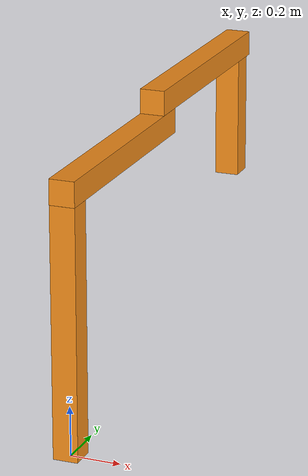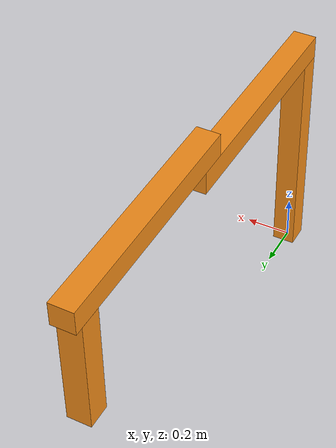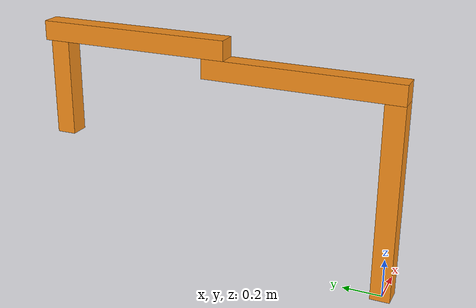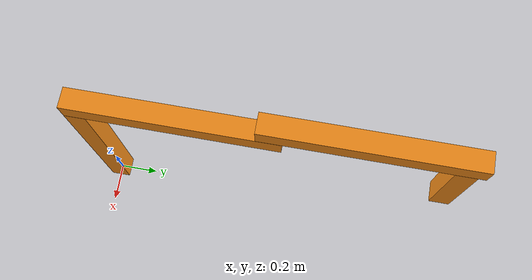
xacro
<?xml version="1.0"?>
<!-- Revolute-Revolute Manipulator -->
<robot name="rrbot" xmlns:xacro="http://www.ros.org/wiki/xacro">

  <!-- Constants for robot dimensions -->
  <xacro:property name="PI" value="3.1415926535897931"/>
  <xacro:property name="mass" value="1" /> <!-- arbitrary value for mass -->
  <xacro:property name="width" value="0.1" /> <!-- Square dimensions (widthxwidth) of beams -->
  <xacro:property name="height1" value="1" /> <!-- Link 1 -->
  <xacro:property name="height2" value="1" /> <!-- Link 2 -->
  <xacro:property name="height3" value="1" /> <!-- Link 3 -->
  <xacro:property name="height4" value="0.5" /> <!-- Link 4 -->
  <xacro:property name="axel_offset" value="0.05" /> <!-- Space btw top of beam and the each joint -->

  <!-- Import all Gazebo-customization elements, including Gazebo colors -->
  <xacro:include filename="$(find rrbot_description)/urdf/rrbot.gazebo" />
  <!-- Import Rviz colors -->
  <xacro:include filename="$(find rrbot_description)/urdf/materials.xacro" />

  <!-- Used for fixing robot to Gazebo 'base_link' -->
  <link name="world"/>

  <joint name="fixed" type="fixed">
    <parent link="world"/>
    <child link="link1"/>
  </joint>

  <!-- Base Link -->
  <link name="link1">
    <collision>
      <origin xyz="0 0 ${height1/2}" rpy="0 0 0"/>
      <geometry>
	<box size="${width} ${width} ${height1}"/>
      </geometry>
    </collision>

    <visual>
      <origin xyz="0 0 ${height1/2}" rpy="0 0 0"/>
      <geometry>
	<box size="${width} ${width} ${height1}"/>
      </geometry>
      <material name="orange"/>
    </visual>

    <inertial>
      <origin xyz="0 0 ${height1/2}" rpy="0 0 0"/>
      <mass value="${mass}"/>
      <inertia
	  ixx="${mass / 12.0 * (width*width + height1*height1)}" ixy="0.0" ixz="0.0"
	  iyy="${mass / 12.0 * (height1*height1 + width*width)}" iyz="0.0"
	  izz="${mass / 12.0 * (width*width + width*width)}"/>
    </inertial>
  </link>

  <joint name="joint1" type="continuous">
    <parent link="link1"/>
    <child link="link2"/>
    <origin xyz="0 0 ${height1 - axel_offset}" rpy="0 0 0"/>
    <axis xyz="0 0 1"/>
    <dynamics damping="0.7"/>
  </joint>

  <!-- Middle Link -->
  <link name="link2">
    <collision>
      <origin xyz="0 ${height2/2-0.5*width} ${width}" rpy="0 1.57 1.57"/>
      <geometry>
	<box size="${width} ${width} ${height2}"/>
      </geometry>
    </collision>

    <visual>
      <origin xyz="0 ${height2/2-0.5*width} ${width}" rpy="0 1.57 1.57"/>
      <geometry>
	<box size="${width} ${width} ${height2}"/>
      </geometry>
      <material name="orange"/>
    </visual>

    <inertial>
      <origin xyz="0 ${height2/2-0.5*width} ${width}" rpy="0 1.57 1.57"/>
      <mass value="${mass}"/>
      <inertia
	  ixx="${mass / 12.0 * (width*width + height2*height2)}" ixy="0.0" ixz="0.0"
	  iyy="${mass / 12.0 * (height2*height2 + width*width)}" iyz="0.0"
	  izz="${mass / 12.0 * (width*width + width*width)}"/>
    </inertial>
  </link>

  <joint name="joint2" type="continuous">
    <parent link="link2"/>
    <child link="link3"/>
    <origin xyz="0 ${height2-width} ${width}" rpy="0 0 0"/>
    <axis xyz="0 0 1"/>
    <dynamics damping="0.7"/>
  </joint>

  <!-- Top Link -->
  <link name="link3">
    <collision>
      <origin xyz="0 ${height2/3+width} ${width}" rpy="1.57 0 0"/>
      <geometry>
	<box size="${width} ${width} ${height3}"/>
      </geometry>
    </collision>

    <visual>
      <origin xyz="0 ${height2/3+width} ${width}" rpy="1.57 0 0"/>
      <geometry>
	<box size="-${width} ${width} ${height3}"/>
      </geometry>
      <material name="orange"/>
    </visual>

    <inertial>
      <origin xyz="0 ${height2/3+width} ${width}" rpy="1.57 0 0"/>
      <mass value="${mass}"/>
      <inertia
	  ixx="${mass / 12.0 * (width*width + height3*height3)}" ixy="0.0" ixz="0.0"
	  iyy="${mass / 12.0 * (height3*height3 + width*width)}" iyz="0.0"
	  izz="${mass / 12.0 * (width*width + width*width)}"/>
    </inertial>
  </link>

<!-- Last Link -->
  <link name="link4">
    <collision>
      <origin xyz="${2*width} 0 0" rpy="0 1.57 0"/>
      <geometry>
	<box size="${width} ${width} ${height4}"/>
      </geometry>
    </collision>

    <visual>
      <origin xyz="${2*width} 0 0" rpy="0 1.57 0"/>
      <geometry>
	<box size="${width} ${width} ${height4}"/>
      </geometry>
      <material name="orange"/>
    </visual>

    <inertial>
      <origin xyz="${2*width} 0 0" rpy="0 1.57 0"/>
      <mass value="${mass}"/>
      <inertia
	  ixx="${mass / 12.0 * (width*width + height4*height4)}" ixy="0.0" ixz="0.0"
	  iyy="${mass / 12.0 * (height4*height4 + width*width)}" iyz="0.0"
	  izz="${mass / 12.0 * (width*width + width*width)}"/>
    </inertial>
  </link>

  <joint name="joint3" type="prismatic">
    <parent link="link3"/>
    <child link="link4"/>
    <limit effort="1000.0" lower="0" upper="0.6" velocity="0.5"/>
    <origin rpy="0 1.57 0" xyz="0 ${height3-1.5*width} 0"/>
  </joint>

  <transmission name="tran1">
    <type>transmission_interface/SimpleTransmission</type>
    <joint name="joint1">
      <hardwareInterface>hardware_interface/VelocityJointInterface</hardwareInterface>
    </joint>
    <actuator name="motor1">
      <hardwareInterface>hardware_interface/VelocityJointInterface</hardwareInterface>
      <mechanicalReduction>1</mechanicalReduction>
    </actuator>
  </transmission>

  <transmission name="tran2">
    <type>transmission_interface/SimpleTransmission</type>
    <joint name="joint2">
      <hardwareInterface>hardware_interface/VelocityJointInterface</hardwareInterface>
    </joint>
    <actuator name="motor2">
      <hardwareInterface>hardware_interface/VelocityJointInterface</hardwareInterface>
      <mechanicalReduction>1</mechanicalReduction>
    </actuator>
  </transmission>

    <transmission name="tran3">
    <type>transmission_interface/SimpleTransmission</type>
    <joint name="joint3">
      <hardwareInterface>hardware_interface/VelocityJointInterface</hardwareInterface>
    </joint>
    <actuator name="motor3">
      <hardwareInterface>hardware_interface/VelocityJointInterface</hardwareInterface>
      <mechanicalReduction>1</mechanicalReduction>
    </actuator>
  </transmission>

</robot>
